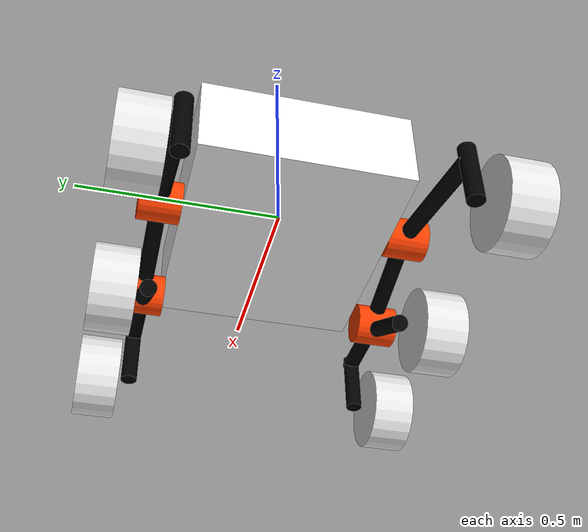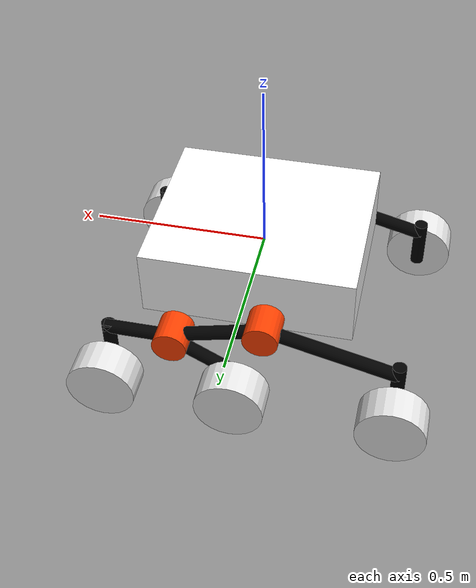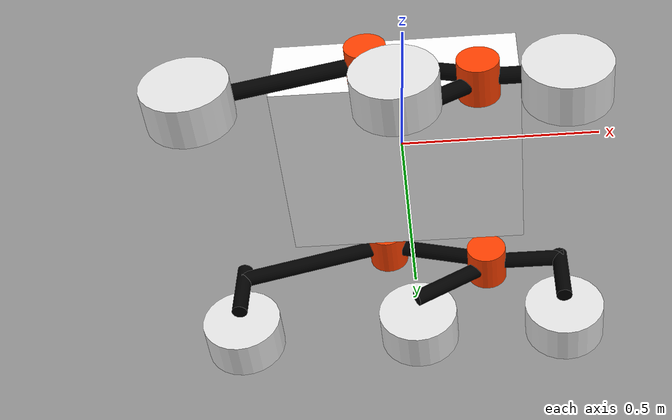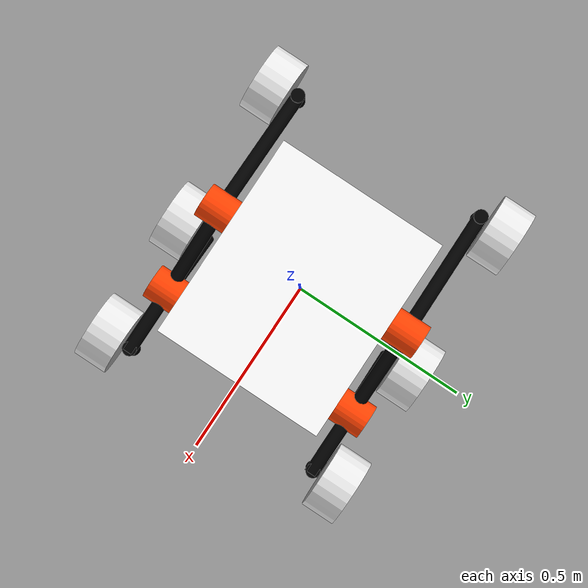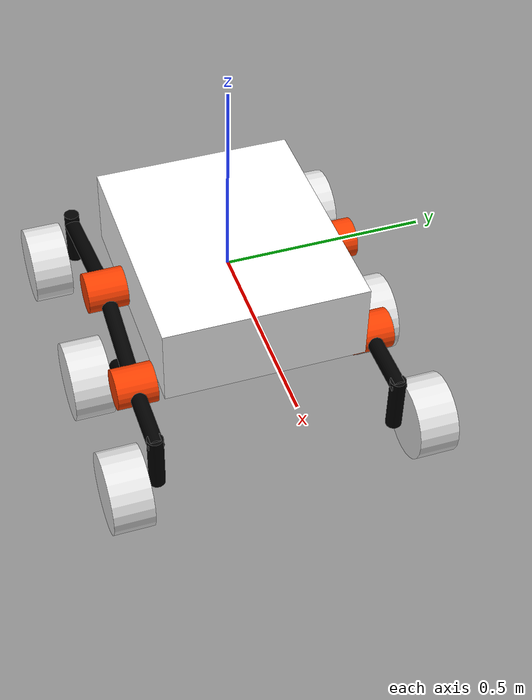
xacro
<?xml version="1.0"?>
<robot name="astra_rover" xmlns:xacro="http://www.ros.org/wiki/xacro">

    	<!-- Robot Mechanical Description-->
	<xacro:include filename="$(find astra_rover_description)/urdf/astra_rover_mechdesc.xacro" />
	<!-- Gazebo aspects of the robot -->
	<xacro:include filename="$(find astra_rover_description)/urdf/astra_rover.gazebo" />

	<astra_rover_mechdesc/>

</robot>

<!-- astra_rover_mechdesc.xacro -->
<robot xmlns:xacro="http://www.ros.org/wiki/xacro">
<xacro:macro name="astra_rover_mechdesc" params = "">

	<xacro:include filename="$(find astra_rover_description)/urdf/astra_rover_transmission.xacro" />

	<!-- * * * Link Definitions * * * -->

	<link name="chassis">
		<visual>
			<origin xyz="0 0 0" rpy="0 0 0"/>
			<axis xyz="0 0 0" />
			<geometry>
				<box size="0.6 0.5 0.2"/>
			</geometry>
			<material name="c">
				<color rgba="1 1 1 1"/>
			</material>
		</visual>

		<inertial>
			<origin xyz="0 0 0" rpy="0 0 0"/>
			<mass value="8"/>
			<inertia ixx="0.19"  ixy="0"  ixz="0" iyy="0.19" iyz="0" izz="0.19" />
		</inertial>

		<collision>
			<geometry>
				<box size="0.6 0.5 0.2"/>
			</geometry>
		</collision>

	</link>

	<link name="rocker_left_front">
		<visual>
			<origin xyz="0.08 0.3 -0.1" rpy="0 1.83 0"/>
			<axis xyz="0 0 0" />
			<geometry>
				<cylinder radius="0.02" length="0.3"/>
			</geometry>
			<material name="black">
				<color rgba="0 0 0 1.0"/>
			</material>
		</visual>

		<inertial>
			<origin xyz="0 0 0" rpy="0 0 0"/>
			<mass value="1.01"/>
			<inertia ixx="0.03"  ixy="0"  ixz="0" iyy="0.0" iyz="0" izz="0.03" />
		</inertial>

		<collision>
			<geometry>
				<cylinder radius="0.02" length="0.3"/>
			</geometry>
		</collision>

	</link>
	<link name="rocker_left_back">
		<visual>
			<origin xyz="-0.25 0.3 -0.11" rpy="0 -1.83 0"/>
			<axis xyz="0 0 0" />
			<geometry>
				<cylinder radius="0.02" length="0.4"/>
			</geometry>
			<material name="black">
				<color rgba="0 0 0 1.0"/>
			</material>
		</visual>

		<inertial>
			<origin xyz="0 0 0" rpy="0 0 0"/>
			<mass value="1.35"/>
			<inertia ixx="0.07"  ixy="0"  ixz="0" iyy="0.0" iyz="0" izz="0.07" />
		</inertial>

		<collision>
			<geometry>
				<cylinder radius="0.02" length="0.4"/>
			</geometry>
		</collision>
	</link>
	<link name="bogey_left_front">
		<visual>
			<origin xyz="0.3 0.3 -0.14" rpy="0 1.57 0"/>
			<axis xyz="0 0 0" />
			<geometry>
				<cylinder radius="0.02" length="0.2"/>
			</geometry>
			<material name="black">
				<color rgba="0 0 0 1.0"/>
			</material>
		</visual>

		<inertial>
			<origin xyz="0 0 0" rpy="0 0 0"/>
			<mass value="0.67"/>
			<inertia ixx="0.01"  ixy="0"  ixz="0" iyy="0.0" iyz="0" izz="0.01" />
		</inertial>

		<collision>
			<geometry>
				<cylinder radius="0.02" length="0.2"/>
			</geometry>
		</collision>

	</link>
	<link name="bogey_left_back">
		<visual>
			<origin xyz="0.12 0.3 -0.2" rpy="0 -2.09 0"/>
			<axis xyz="0 0 0" />
			<geometry>
				<cylinder radius="0.02" length="0.24"/>
			</geometry>
			<material name="black">
				<color rgba="0 0 0 1.0"/>
			</material>
		</visual>

		<inertial>
			<origin xyz="0 0 0" rpy="0 0 0"/>
			<mass value="0.81"/>
			<inertia ixx="0.015"  ixy="0"  ixz="0" iyy="0.0" iyz="0" izz="0.015" />
		</inertial>

		<collision>
			<geometry>
				<cylinder radius="0.02" length="0.24"/>
			</geometry>
		</collision>

	</link>
	<link name="bogey_steering_left">
		<visual>
			<origin xyz="0 0 0" rpy="0 0 0"/>
			<axis xyz="0 0 0" />
			<geometry>
				<cylinder radius="0.02" length="0.15"/>
			</geometry>
			<material name="black">
				<color rgba="0 0 0 1.0"/>
			</material>
		</visual>

		<inertial>
			<origin xyz="0 0 0" rpy="0 0 0"/>
			<mass value="0.50"/>
			<inertia ixx="0.001"  ixy="0"  ixz="0" iyy="0.001" iyz="0" izz="0.0" />
		</inertial>

		<collision>
			<geometry>
				<cylinder radius="0.02" length="0.15"/>
			</geometry>
		</collision>

	</link>
	<link name="rocker_steering_left">
		<visual>
			<origin xyz="0 0 0" rpy="0 0 0"/>
			<axis xyz="0 0 0" />
			<geometry>
				<cylinder radius="0.02" length="0.15"/>
			</geometry>
			<material name="black">
				<color rgba="0 0 0 1.0"/>
			</material>
		</visual>

		<inertial>
			<origin xyz="0 0 0" rpy="0 0 0"/>
			<mass value="0.50"/>
			<inertia ixx="0.001"  ixy="0"  ixz="0" iyy="0.001" iyz="0" izz="0.0" />
		</inertial>

		<collision>
			<geometry>
				<cylinder radius="0.02" length="0.15"/>
			</geometry>
		</collision>
	</link>

	<link name="rocker_right_front">
		<visual>
			<origin xyz="0.08 -0.3 -0.1" rpy="0 1.83 0"/>
			<axis xyz="0 0 0" />
			<geometry>
				<cylinder radius="0.02" length="0.3"/>
			</geometry>
			<material name="black">
				<color rgba="0 0 0 1.0"/>
			</material>
		</visual>

		<inertial>
			<origin xyz="0 0 0" rpy="0 0 0"/>
			<mass value="1.01"/>
			<inertia ixx="0.03"  ixy="0"  ixz="0" iyy="0.03" iyz="0" izz="0.03" />
		</inertial>

		<collision>
			<geometry>
				<cylinder radius="0.02" length="0.3"/>
			</geometry>
		</collision>
	</link>
	<link name="rocker_right_back">
		<visual>
			<origin xyz="-0.25 -0.3 -0.11" rpy="0 -1.83 0"/>
			<axis xyz="0 0 0" />
			<geometry>
				<cylinder radius="0.02" length="0.4"/>
			</geometry>
			<material name="black">
				<color rgba="0 0 0 1.0"/>
			</material>
		</visual>

		<inertial>
			<origin xyz="0 0 0" rpy="0 0 0"/>
			<mass value="1.35"/>
			<inertia ixx="0.07"  ixy="0"  ixz="0" iyy="0.0" iyz="0" izz="0.07" />
		</inertial>

		<collision>
			<geometry>
				<cylinder radius="0.02" length="0.4"/>
			</geometry>
		</collision>
	</link>
	<link name="bogey_right_front">
		<visual>
			<origin xyz="0.3 -0.3 -0.14" rpy="0 1.57 0"/>
			<axis xyz="0 0 0" />
			<geometry>
				<cylinder radius="0.02" length="0.2"/>
			</geometry>
			<material name="black">
				<color rgba="0 0 0 1.0"/>
			</material>
		</visual>

		<inertial>
			<origin xyz="0 0 0" rpy="0 0 0"/>
			<mass value="0.67"/>
			<inertia ixx="0.01"  ixy="0"  ixz="0" iyy="0.0" iyz="0" izz="0.01" />
		</inertial>

		<collision>
			<geometry>
				<cylinder radius="0.02" length="0.2"/>
			</geometry>
		</collision>

	</link>
	<link name="bogey_right_back">
		<visual>
			<origin xyz="0.12 -0.3 -0.2" rpy="0 -2.09 0"/>
			<axis xyz="0 0 0" />
			<geometry>
				<cylinder radius="0.02" length="0.24"/>
			</geometry>
			<material name="black">
				<color rgba="0 0 0 1.0"/>
			</material>
		</visual>

		<inertial>
			<origin xyz="0 0 0" rpy="0 0 0"/>
			<mass value="0.81"/>
			<inertia ixx="0.015"  ixy="0"  ixz="0" iyy="0.0" iyz="0" izz="0.015" />
		</inertial>

		<collision>
			<geometry>
				<cylinder radius="0.02" length="0.24"/>
			</geometry>
		</collision>

	</link>
	<link name="bogey_steering_right">
		<visual>
			<origin xyz="0 0 0" rpy="0 0 0"/>
			<axis xyz="0 0 0" />
			<geometry>
				<cylinder radius="0.02" length="0.15"/>
			</geometry>
			<material name="black">
				<color rgba="0 0 0 1.0"/>
			</material>
		</visual>

		<inertial>
			<origin xyz="0 0 0" rpy="0 0 0"/>
			<mass value="0.50"/>
			<inertia ixx="0.001"  ixy="0"  ixz="0" iyy="0.001" iyz="0" izz="0.0" />
		</inertial>

		<collision>
			<geometry>
				<cylinder radius="0.02" length="0.15"/>
			</geometry>
		</collision>

	</link>
	<link name="rocker_steering_right">
		<visual>
			<origin xyz="0 0 0" rpy="0 0 1.57"/>
			<axis xyz="0 0 0" />
			<geometry>
				<cylinder radius="0.02" length="0.15"/>
			</geometry>
			<material name="tyre">
				<color rgba="0 0 0 1.0"/>
			</material>
		</visual>

		<inertial>
			<origin xyz="0 0 0" rpy="0 0 0"/>
			<mass value="0.50"/>
			<inertia ixx="0.001"  ixy="0"  ixz="0" iyy="0.001" iyz="0" izz="0.0" />
		</inertial>

		<collision>
			<geometry>
				<cylinder radius="0.02" length="0.15"/>
			</geometry>
		</collision>

	</link>
	<link name="wheel_right_3">
		<visual>
			<origin xyz="0 0 0" rpy="1.57 0 0"/>
			<axis xyz="0 0 0" />
			<geometry>
				<cylinder radius="0.1" length="0.1"/>
			</geometry>
			<material name="grey1">
				<color rgba="0.9 0.9 0.9 1.0"/>
			</material>
		</visual>
		<inertial>
			<origin xyz="0 0 0" rpy="0 0 0"/>
			<mass value="0.62"/>
			<inertia ixx="0.002"  ixy="0"  ixz="0" iyy="0.003" iyz="0" izz="0.002" />
		</inertial>

		<collision>
			<geometry>
				<cylinder radius="0.1" length="0.1"/>
			</geometry>
		</collision>

	</link>
	<link name="wheel_right_2">
		<visual>
			<origin xyz="0 0 0" rpy="1.57 0 0"/>
			<axis xyz="0 0 0" />
			<geometry>
				<cylinder radius="0.1" length="0.1"/>
			</geometry>
			<material name="grey1">
				<color rgba="0.9 0.9 0.9 1.0"/>
			</material>
		</visual>
		<inertial>
			<origin xyz="0 0 0" rpy="0 0 0"/>
			<mass value="0.62"/>
			<inertia ixx="0.002"  ixy="0"  ixz="0" iyy="0.003" iyz="0" izz="0.002" />
		</inertial>

		<collision>
			<geometry>
				<cylinder radius="0.1" length="0.1"/>
			</geometry>
		</collision>

	</link>
	<link name="wheel_right_1">
		<visual>
			<origin xyz="0 0 0" rpy="1.57 0 0"/>
			<axis xyz="0 0 0" />
			<geometry>
				<cylinder radius="0.1" length="0.1"/>
			</geometry>
			<material name="grey1">
				<color rgba="0.9 0.9 0.9 1.0"/>
			</material>
		</visual>

		<inertial>
			<origin xyz="0 0 0" rpy="0 0 0"/>
			<mass value="0.62"/>
			<inertia ixx="0.002"  ixy="0"  ixz="0" iyy="0.003" iyz="0" izz="0.002" />
		</inertial>

		<collision>
			<geometry>
				<cylinder radius="0.1" length="0.1"/>
			</geometry>
		</collision>

	</link>
	<link name="wheel_left_3">
		<visual>
			<origin xyz="0 0 0" rpy="1.57 0 0"/>
			<axis xyz="0 0 0" />
			<geometry>
				<cylinder radius="0.1" length="0.1"/>
			</geometry>
			<material name="grey1">
				<color rgba="0.9 0.9 0.9 1.0"/>
			</material>
		</visual>
		<inertial>
			<origin xyz="0 0 0" rpy="0 0 0"/>
			<mass value="0.62"/>
			<inertia ixx="0.002"  ixy="0"  ixz="0" iyy="0.003" iyz="0" izz="0.002" />
		</inertial>

		<collision>
			<geometry>
				<cylinder radius="0.1" length="0.1"/>
			</geometry>
		</collision>

	</link>
	<link name="wheel_left_2">
		<visual>
			<origin xyz="0 0 0" rpy="1.57 0 0"/>
			<axis xyz="0 0 0" />
			<geometry>
				<cylinder radius="0.1" length="0.1"/>
			</geometry>
			<material name="grey1">
				<color rgba="0.9 0.9 0.9 1.0"/>
			</material>
		</visual>

		<inertial>
			<origin xyz="0 0 0" rpy="0 0 0"/>
			<mass value="0.62"/>
			<inertia ixx="0.002"  ixy="0"  ixz="0" iyy="0.003" iyz="0" izz="0.002" />
		</inertial>

		<collision>
			<geometry>
				<cylinder radius="0.1" length="0.1"/>
			</geometry>
		</collision>

	</link>
	<link name="wheel_left_1">
		<visual>
			<origin xyz="0 0 0" rpy="1.57 0 0"/>
			<axis xyz="0 0 0" />
			<geometry>
				<cylinder radius="0.1" length="0.1"/>
			</geometry>
			<material name="grey1">
				<color rgba="0.9 0.9 0.9 1.0"/>
			</material>
		</visual>

		<inertial>
			<origin xyz="0 0 0" rpy="0 0 0"/>
			<mass value="0.62"/>
			<inertia ixx="0.002"  ixy="0"  ixz="0" iyy="0.003" iyz="0" izz="0.002" />
		</inertial>

		<collision>
			<geometry>
				<cylinder radius="0.1" length="0.1"/>
			</geometry>
		</collision>

	</link>
	<link name="rocker_hinge_left">
		<visual>
			<origin xyz="0 0 0" rpy="1.57 0 0"/>
			<axis xyz="0 0 0" />
			<geometry>
				<cylinder radius="0.05" length="0.1"/>
			</geometry>
			<material name="red">
				<color rgba="1 0.25 0 1.0"/>
			</material>
		</visual>

		<inertial>
			<origin xyz="0 0 0" rpy="0 0 0"/>
			<mass value="0.01"/>
			<inertia ixx="0.0"  ixy="0"  ixz="0" iyy="0.001" iyz="0" izz="0.0" />
		</inertial>

		<collision>
			<geometry>
				<cylinder radius="0.05" length="0.1"/>
			</geometry>
		</collision>

	</link>

	<link name="rocker_hinge_right">
		<visual>
			<origin xyz="0 0 0" rpy="1.57 0 0"/>
			<axis xyz="0 0 0" />
			<geometry>
				<cylinder radius="0.05" length="0.1"/>
			</geometry>
			<material name="red">
				<color rgba="1 0.25 0 1.0"/>
			</material>
		</visual>

		<inertial>
			<origin xyz="0 0 0" rpy="0 0 0"/>
			<mass value="0.01"/>
			<inertia ixx="0.0"  ixy="0"  ixz="0" iyy="0.001" iyz="0" izz="0.0" />
		</inertial>

		<collision>
			<geometry>
				<cylinder radius="0.05" length="0.1"/>
			</geometry>
		</collision>

	</link>
	<link name="bogey_hinge_left">
		<visual>
			<origin xyz="0 0 0" rpy="1.57 0 0"/>
			<axis xyz="0 0 0" />
			<geometry>
				<cylinder radius="0.05" length="0.1"/>
			</geometry>
			<material name="red">
				<color rgba="1 0.25 0 1.0"/>
			</material>
		</visual>

		<inertial>
			<origin xyz="0 0 0" rpy="0 0 0"/>
			<mass value="0.01"/>
			<inertia ixx="0.0"  ixy="0"  ixz="0" iyy="0.001" iyz="0" izz="0.0" />
		</inertial>

		<collision>
			<geometry>
				<cylinder radius="0.05" length="0.1"/>
			</geometry>
		</collision>

	</link>

	<link name="bogey_hinge_right">
		<visual>
			<origin xyz="0 0 0" rpy="1.57 0 0"/>
			<axis xyz="0 0 0" />
			<geometry>
				<cylinder radius="0.05" length="0.1"/>
			</geometry>
			<material name="red">
				<color rgba="1 0.25 0 1.0"/>
			</material>
		</visual>

        <inertial>
			<origin xyz="0 0 0" rpy="0 0 0"/>
			<mass value="0.01"/>
			<inertia ixx="0.0"  ixy="0"  ixz="0" iyy="0.001" iyz="0" izz="0.0" />
		</inertial>

		<collision>
			<geometry>
				<cylinder radius="0.05" length="0.1"/>
			</geometry>
		</collision>
	</link>

	<!-- * * * Joint Definitions * * * -->

	<joint name="rocker_hinge_right" type="revolute">
		<parent link="chassis"/>
		<child link="rocker_hinge_right"/>
		<origin xyz="-0.06 -0.3 -0.06" rpy="0 0 0"/>
		<axis xyz="0 1 0"/>
		<limit lower="-3.1416" upper="3.1416" effort="50" velocity="1"/>
	</joint>

	<joint name="rhr" type="fixed">
		<parent link="rocker_hinge_right"/>
		<child link="rocker_right_back"/>
		<origin xyz="0.06 0.3 0.06" rpy="0 0 0"/>
	</joint>

	<joint name="rocker_right" type="fixed">
		<parent link="rocker_right_back"/>
		<child link="rocker_right_front"/>
		<origin xyz="0 0 0" rpy="0 0 0"/>
	</joint>

	<joint name="rocker_hinge_left" type="revolute">
		<parent link="chassis"/>
		<child link="rocker_hinge_left"/>
		<origin xyz="-0.06 0.3 -0.06" rpy="0 0 0"/>
		<axis xyz="0 1 0"/>
		<limit lower="-3.1416" upper="3.1416" effort="50" velocity="1"/>
	</joint>

	<joint name="rhl" type="fixed">
		<parent link="rocker_hinge_left"/>
		<child link="rocker_left_back"/>
		<origin xyz="0.06 -0.3 0.06" rpy="0 0 0"/>
	</joint>

	<joint name="rocker_left" type="fixed">
		<parent link="rocker_left_back"/>
		<child link="rocker_left_front"/>
		<origin xyz="0 0 0" rpy="0 0 0"/>
	</joint>

	<joint name="bogey_hinge_left" type="revolute">
		<parent link="rocker_left_front"/>
		<child link="bogey_hinge_left"/>
		<origin xyz="0.2 0.3 -0.14" rpy="0 0 0"/>
		<axis xyz="0 1 0"/>
		<limit lower="-3.1416" upper="3.1416" effort="50" velocity="1"/>
	</joint>

	<joint name="bhl" type="fixed">
		<parent link="bogey_hinge_left"/>
		<child link="bogey_left_back"/>
		<origin xyz="-0.2 -0.3 0.14" rpy="0 0 0"/>
	</joint>

	<joint name="bogey_left" type="fixed">
		<parent link="bogey_left_back"/>
		<child link="bogey_left_front"/>
		<origin xyz="0 0 0" rpy="0 0 0"/>
	</joint>

	<joint name="bogey_hinge_right" type="revolute">
		<parent link="rocker_right_front"/>
		<child link="bogey_hinge_right"/>
		<origin xyz="0.2 -0.3 -0.14" rpy="0 0 0"/>
		<axis xyz="0 1 0"/>
		<limit lower="-3.1416" upper="3.1416" effort="50" velocity="1"/>
	</joint>

	<joint name="bhr" type="fixed">
		<parent link="bogey_hinge_right"/>
		<child link="bogey_right_back"/>
		<origin xyz="-0.2 0.3 0.14" rpy="0 0 0"/>
	</joint>

	<joint name="bogey_right" type="fixed">
		<parent link="bogey_right_back"/>
		<child link="bogey_right_front"/>
		<origin xyz="0 0 0" rpy="0 0 0"/>
	</joint>

	<!--* * * Wheel Joint Definitions * * *-->

	<joint name="wheel_left_3_joint" type="continuous">
		<parent link="rocker_steering_left"/>
		<child link="wheel_left_3"/>
		<origin xyz="0 0.08 -0.075" rpy="0 0 0"/>
		<axis xyz="0 1 0"/>
		<limit  effort="10" velocity="5"/>
	</joint>

	<joint name="wheel_left_2_joint" type="continuous">
		<parent link="bogey_left_back"/>
		<child link="wheel_left_2"/>
		<origin xyz="0.016 0.38 -0.275" rpy="0 0 0"/>
		<axis xyz="0 1 0"/>
		<limit  effort="10" velocity="5"/>
	</joint>

	<joint name="wheel_left_1_joint" type="continuous">
		<parent link="bogey_steering_left"/>
		<child link="wheel_left_1"/>
		<origin xyz="0 0.08 -0.075" rpy="0 0 0"/>
		<axis xyz="0 1 0"/>
		<limit  effort="10" velocity="5"/>
	</joint>

	<joint name="wheel_right_3_joint" type="continuous">
		<parent link="rocker_steering_right"/>
		<child link="wheel_right_3"/>
		<origin xyz="0 -0.08 -0.075" rpy="0 0 3.14"/>
		<axis xyz="0 1 0"/>
		<limit  effort="10" velocity="5"/>
	</joint>

	<joint name="wheel_right_2_joint" type="continuous">
		<parent link="bogey_right_back"/>
		<child link="wheel_right_2"/>
		<origin xyz="0.016 -0.38 -0.275" rpy="0 0 3.14"/>
		<axis xyz="0 1 0"/>
		<limit  effort="10" velocity="5"/>
	</joint>

	<joint name="wheel_right_1_joint" type="continuous">
		<parent link="bogey_steering_right"/>
		<child link="wheel_right_1"/>
		<origin xyz="0 -0.08 -0.075" rpy="0 0 3.14"/>
		<axis xyz="0 1 0"/>
		<limit  effort="10" velocity="5"/>
	</joint>

	<!--* * * Steering Joint Definitions * * *-->

	<joint name= "bogey_steering_right_joint" type="revolute">
		<parent link="bogey_right_front"/>
		<child link="bogey_steering_right"/>
		<origin xyz="0.39 -0.3 -0.2" rpy="0 0 0"/>
		<axis xyz="0 0 1"/>
		<limit lower="-2.356" upper="2.356" effort="15"                     velocity="3"/>
	</joint>

	<joint name="rocker_steering_right_joint" type="revolute">
		<parent link="rocker_right_back"/>
		<child link="rocker_steering_right"/>
		<origin xyz="-0.44 -0.3 -0.2" rpy="0 0 0"/>
		<axis xyz="0 0 1"/>
		<limit lower="-2.356" upper="2.356" effort="15"                     velocity="3"/>
	</joint>
	<joint name="bogey_steering_left_joint" type="revolute">
		<parent link="bogey_left_front"/>
		<child link="bogey_steering_left"/>
		<origin xyz="0.39 0.3 -0.2" rpy="0 0 0"/>
		<axis xyz="0 0 1"/>
		<limit lower="-2.356" upper="2.356" effort="15"                     velocity="3"/>
	</joint>

	<joint name="rocker_steering_left_joint" type="revolute">
		<parent link="rocker_left_back"/>
		<child link="rocker_steering_left"/>
		<origin xyz="-0.44 0.3 -0.2" rpy="0 0 0"/>
		<axis xyz="0 0 1"/>
		<limit lower="-2.356" upper="2.356" effort="15"                     velocity="3"/>
	</joint>

	<wheel_transmission wheel_name="wheel_right_1"/>
	<wheel_transmission wheel_name="wheel_right_2"/>
	<wheel_transmission wheel_name="wheel_right_3"/>

	<wheel_transmission wheel_name="wheel_left_1"/>
	<wheel_transmission wheel_name="wheel_left_2"/>
	<wheel_transmission wheel_name="wheel_left_3"/>

	<steering_transmission steering_name="bogey_steering_right"/>
	<steering_transmission steering_name="bogey_steering_leftt"/>
	<steering_transmission steering_name="rocker_steering_right"/>
	<steering_transmission steering_name="rocker_steering_left"/>

	<hinge_transmission hinge_name="bogey_hinge_right"/>
	<hinge_transmission hinge_name="bogey_hinge_leftt"/>
	<hinge_transmission hinge_name="rocker_hinge_right"/>
	<hinge_transmission hinge_name="rocker_hinge_left"/>

</xacro:macro>
</robot>
